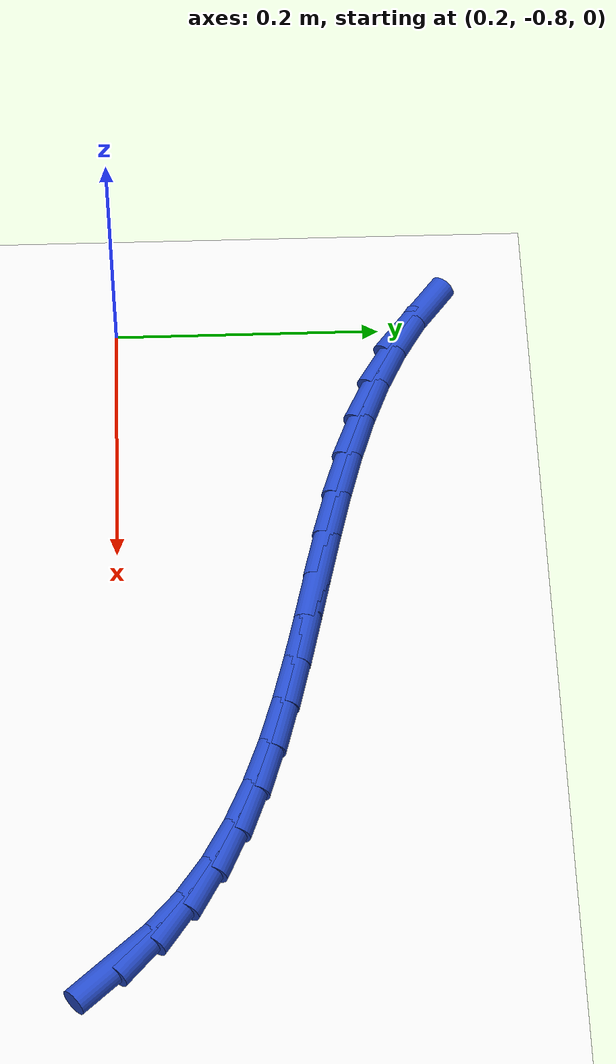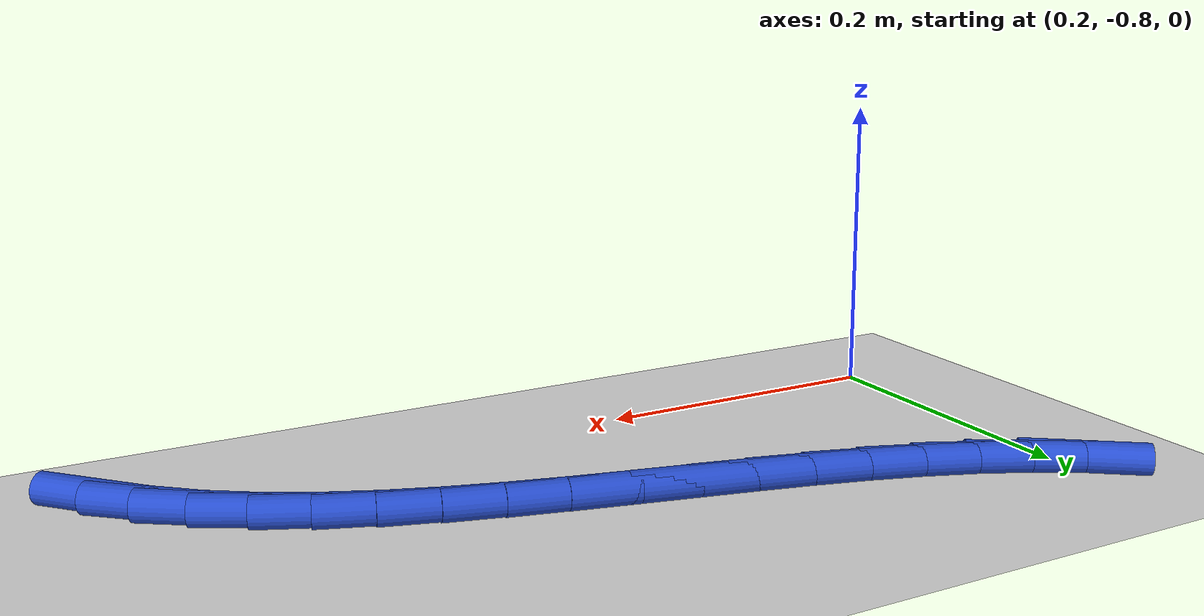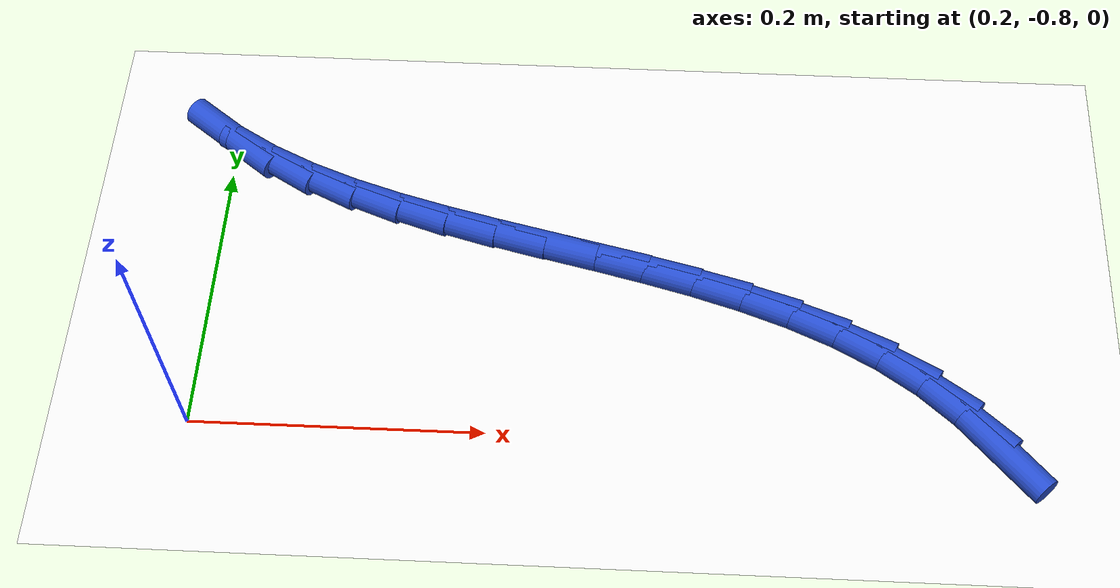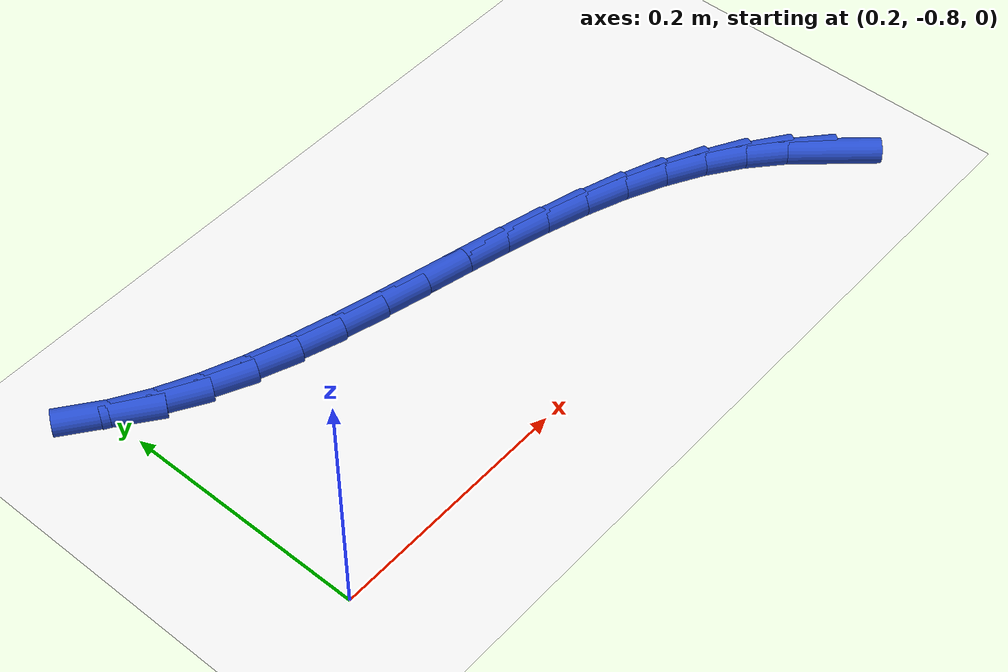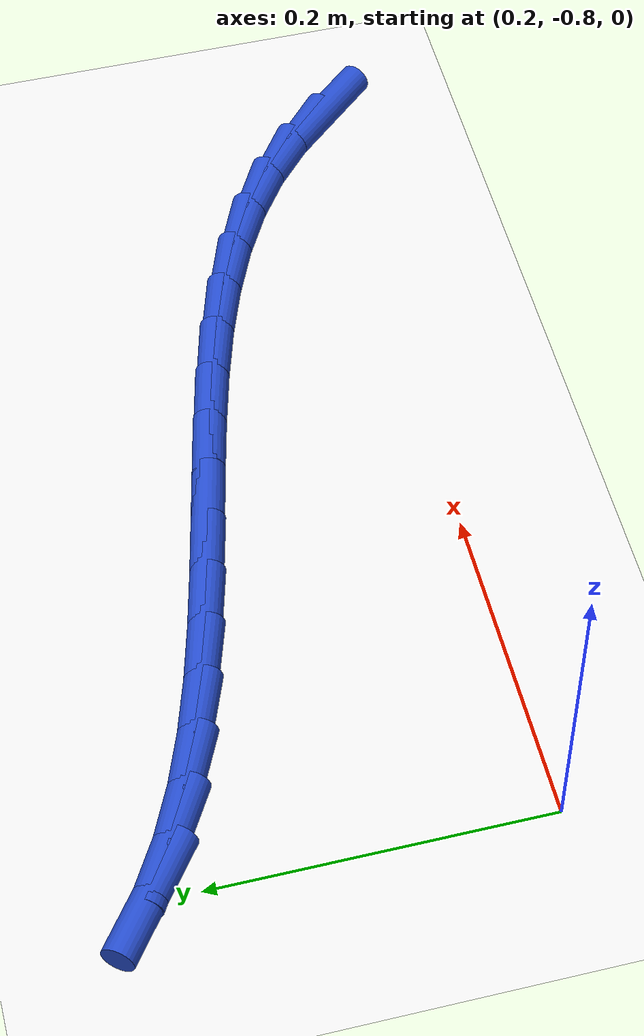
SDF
<sdf version="1.6">
 <world name="default">
  <model name="ground_plane">
   <static>1</static>
   <link name="link">
    <collision name="collision">
     <geometry><plane><normal>0 0 1</normal><size>100 100</size></plane></geometry>
     <surface><friction><ode><mu>100</mu><mu2>50</mu2></ode></friction></surface>
    </collision>
    <visual name="visual">
     <cast_shadows>0</cast_shadows>
     <geometry><plane><normal>0 0 1</normal><size>100 100</size></plane></geometry>
     <material>
      <script><uri>file://media/materials/scripts/gazebo.material</uri><name>Gazebo/WhiteGlow</name></script>
     </material>
    </visual>
   </link>
  </model>
  <model name="line">
   <link name="link_185">
    <pose>0.7398956462431349 -0.8008782224350615 0.01 0 1.57 -0.838470613528333</pose>
    <collision name="collision">
     <geometry><cylinder><radius>0.01</radius><length>0.08</length></cylinder></geometry>
    </collision>
    <visual name="visual">
     <material>
      <script><name>Gazebo/Blue</name><uri>file://media/materials/scripts/gazebo.material</uri></script>
     </material>
     <geometry><cylinder><radius>0.01</radius><length>0.08</length></cylinder></geometry>
    </visual>
   </link>
   <link name="link_186">
    <pose>0.7174436913957366 -0.7759070397513331 0.01 0 1.57 -0.724195327732001</pose>
    <collision name="collision">
     <geometry><cylinder><radius>0.01</radius><length>0.08</length></cylinder></geometry>
    </collision>
    <visual name="visual">
     <material>
      <script><name>Gazebo/Blue</name><uri>file://media/materials/scripts/gazebo.material</uri></script>
     </material>
     <geometry><cylinder><radius>0.01</radius><length>0.08</length></cylinder></geometry>
    </visual>
   </link>
   <link name="link_187">
    <pose>0.6925165846648663 -0.7538585668487454 0.01 0 1.57 -0.6066267034431743</pose>
    <collision name="collision">
     <geometry><cylinder><radius>0.01</radius><length>0.08</length></cylinder></geometry>
    </collision>
    <visual name="visual">
     <material>
      <script><name>Gazebo/Blue</name><uri>file://media/materials/scripts/gazebo.material</uri></script>
     </material>
     <geometry><cylinder><radius>0.01</radius><length>0.08</length></cylinder></geometry>
    </visual>
   </link>
   <link name="link_188">
    <pose>0.6650824226787091 -0.7348217400276645 0.01 0 1.57 -0.5046329074534326</pose>
    <collision name="collision">
     <geometry><cylinder><radius>0.01</radius><length>0.08</length></cylinder></geometry>
    </collision>
    <visual name="visual">
     <material>
      <script><name>Gazebo/Blue</name><uri>file://media/materials/scripts/gazebo.material</uri></script>
     </material>
     <geometry><cylinder><radius>0.01</radius><length>0.08</length></cylinder></geometry>
    </visual>
   </link>
   <link name="link_189">
    <pose>0.6354401975644225 -0.7184493496680845 0.01 0 1.57 -0.4204390475712559</pose>
    <collision name="collision">
     <geometry><cylinder><radius>0.01</radius><length>0.08</length></cylinder></geometry>
    </collision>
    <visual name="visual">
     <material>
      <script><name>Gazebo/Blue</name><uri>file://media/materials/scripts/gazebo.material</uri></script>
     </material>
     <geometry><cylinder><radius>0.01</radius><length>0.08</length></cylinder></geometry>
    </visual>
   </link>
   <link name="link_190">
    <pose>0.6039180189141075 -0.7043558070738681 0.01 0 1.57 -0.3533927770310654</pose>
    <collision name="collision">
     <geometry><cylinder><radius>0.01</radius><length>0.08</length></cylinder></geometry>
    </collision>
    <visual name="visual">
     <material>
      <script><name>Gazebo/Blue</name><uri>file://media/materials/scripts/gazebo.material</uri></script>
     </material>
     <geometry><cylinder><radius>0.01</radius><length>0.08</length></cylinder></geometry>
    </visual>
   </link>
   <link name="link_191">
    <pose>0.570843996319867 -0.6921555235488787 0.01 0 1.57 -0.3022090864547981</pose>
    <collision name="collision">
     <geometry><cylinder><radius>0.01</radius><length>0.08</length></cylinder></geometry>
    </collision>
    <visual name="visual">
     <material>
      <script><name>Gazebo/Blue</name><uri>file://media/materials/scripts/gazebo.material</uri></script>
     </material>
     <geometry><cylinder><radius>0.01</radius><length>0.08</length></cylinder></geometry>
    </visual>
   </link>
   <link name="link_192">
    <pose>0.5365462393738021 -0.6814629103969794 0.01 0 1.57 -0.2655202779847408</pose>
    <collision name="collision">
     <geometry><cylinder><radius>0.01</radius><length>0.08</length></cylinder></geometry>
    </collision>
    <visual name="visual">
     <material>
      <script><name>Gazebo/Blue</name><uri>file://media/materials/scripts/gazebo.material</uri></script>
     </material>
     <geometry><cylinder><radius>0.01</radius><length>0.08</length></cylinder></geometry>
    </visual>
   </link>
   <link name="link_193">
    <pose>0.5013528576680142 -0.6718923789220329 0.01 0 1.57 -0.24218205772288054</pose>
    <collision name="collision">
     <geometry><cylinder><radius>0.01</radius><length>0.08</length></cylinder></geometry>
    </collision>
    <visual name="visual">
     <material>
      <script><name>Gazebo/Blue</name><uri>file://media/materials/scripts/gazebo.material</uri></script>
     </material>
     <geometry><cylinder><radius>0.01</radius><length>0.08</length></cylinder></geometry>
    </visual>
   </link>
   <link name="link_194">
    <pose>0.4655919607946048 -0.6630583404279023 0.01 0 1.57 -0.23141898332361377</pose>
    <collision name="collision">
     <geometry><cylinder><radius>0.01</radius><length>0.08</length></cylinder></geometry>
    </collision>
    <visual name="visual">
     <material>
      <script><name>Gazebo/Blue</name><uri>file://media/materials/scripts/gazebo.material</uri></script>
     </material>
     <geometry><cylinder><radius>0.01</radius><length>0.08</length></cylinder></geometry>
    </visual>
   </link>
   <link name="link_195">
    <pose>0.42959165834567453 -0.6545752062184504 0.01 0 1.57 -0.23288492440608013</pose>
    <collision name="collision">
     <geometry><cylinder><radius>0.01</radius><length>0.08</length></cylinder></geometry>
    </collision>
    <visual name="visual">
     <material>
      <script><name>Gazebo/Blue</name><uri>file://media/materials/scripts/gazebo.material</uri></script>
     </material>
     <geometry><cylinder><radius>0.01</radius><length>0.08</length></cylinder></geometry>
    </visual>
   </link>
   <link name="link_196">
    <pose>0.393680059913327 -0.646057387597541 0.01 0 1.57 -0.24668543867852896</pose>
    <collision name="collision">
     <geometry><cylinder><radius>0.01</radius><length>0.08</length></cylinder></geometry>
    </collision>
    <visual name="visual">
     <material>
      <script><name>Gazebo/Blue</name><uri>file://media/materials/scripts/gazebo.material</uri></script>
     </material>
     <geometry><cylinder><radius>0.01</radius><length>0.08</length></cylinder></geometry>
    </visual>
   </link>
   <link name="link_197">
    <pose>0.35818527508966247 -0.6371192958690363 0.01 0 1.57 -0.27338204782842807</pose>
    <collision name="collision">
     <geometry><cylinder><radius>0.01</radius><length>0.08</length></cylinder></geometry>
    </collision>
    <visual name="visual">
     <material>
      <script><name>Gazebo/Blue</name><uri>file://media/materials/scripts/gazebo.material</uri></script>
     </material>
     <geometry><cylinder><radius>0.01</radius><length>0.08</length></cylinder></geometry>
    </visual>
   </link>
   <link name="link_198">
    <pose>0.32343541346678273 -0.6273753423367994 0.01 0 1.57 -0.31397497931888674</pose>
    <collision name="collision">
     <geometry><cylinder><radius>0.01</radius><length>0.08</length></cylinder></geometry>
    </collision>
    <visual name="visual">
     <material>
      <script><name>Gazebo/Blue</name><uri>file://media/materials/scripts/gazebo.material</uri></script>
     </material>
     <geometry><cylinder><radius>0.01</radius><length>0.08</length></cylinder></geometry>
    </visual>
   </link>
   <link name="link_199">
    <pose>0.28975858463678855 -0.6164399383046936 0.01 0 1.57 -0.3698355303527625</pose>
    <collision name="collision">
     <geometry><cylinder><radius>0.01</radius><length>0.08</length></cylinder></geometry>
    </collision>
    <visual name="visual">
     <material>
      <script><name>Gazebo/Blue</name><uri>file://media/materials/scripts/gazebo.material</uri></script>
     </material>
     <geometry><cylinder><radius>0.01</radius><length>0.08</length></cylinder></geometry>
    </visual>
   </link>
   <link name="link_200">
    <pose>0.25748289819178294 -0.6039274950765819 0.01 0 1.57 -0.4425268154878861</pose>
    <collision name="collision">
     <geometry><cylinder><radius>0.01</radius><length>0.08</length></cylinder></geometry>
    </collision>
    <visual name="visual">
     <material>
      <script><name>Gazebo/Blue</name><uri>file://media/materials/scripts/gazebo.material</uri></script>
     </material>
     <geometry><cylinder><radius>0.01</radius><length>0.08</length></cylinder></geometry>
    </visual>
   </link>
   <link name="link_201">
    <pose>0.22693646372386675 -0.589452423956327 0.01 0 1.57 -0.5334176783000145</pose>
    <collision name="collision">
     <geometry><cylinder><radius>0.01</radius><length>0.08</length></cylinder></geometry>
    </collision>
    <visual name="visual">
     <material>
      <script><name>Gazebo/Blue</name><uri>file://media/materials/scripts/gazebo.material</uri></script>
     </material>
     <geometry><cylinder><radius>0.01</radius><length>0.08</length></cylinder></geometry>
    </visual>
   </link>
   <link name="link_202">
    <pose>0.19844739082514146 -0.5726291362477924 0.01 0 1.57 -0.6429956491448627</pose>
    <collision name="collision">
     <geometry><cylinder><radius>0.01</radius><length>0.08</length></cylinder></geometry>
    </collision>
    <visual name="visual">
     <material>
      <script><name>Gazebo/Blue</name><uri>file://media/materials/scripts/gazebo.material</uri></script>
     </material>
     <geometry><cylinder><radius>0.01</radius><length>0.08</length></cylinder></geometry>
    </visual>
   </link>
  </model>
 </world>
</sdf>
